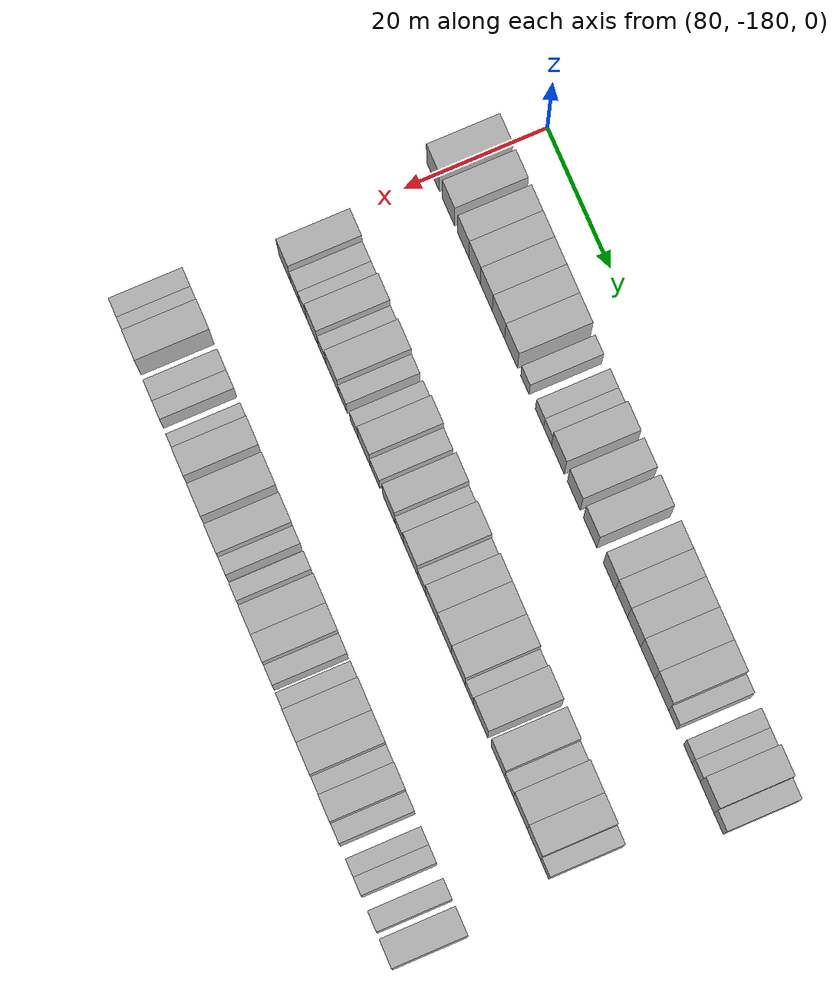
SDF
<sdf version="1.6">
 <world name="default">
  <model name="building_630">
   <static>1</static>
   <pose>91.0000 -179.8548 0 0.000000 0.000000 0.000000</pose>
   <link name="link">
    <pose>0 0 4.50 0 0 0</pose>
    <collision name="collision"><geometry><box><size>10.0000 4.0640 9.0000</size></box></geometry></collision>
    <visual name="visual">
     <cast_shadows>0</cast_shadows>
     <geometry><box><size>10.0000 4.0640 9.0000</size></box></geometry>
     <material>
      <script>
       <uri>model://HANNAS_wall/materials/scripts</uri>
       <uri>model://HANNAS_wall/materials/textures</uri>
       <name>vrc/HANNAS_wall</name>
      </script>
     </material>
    </visual>
   </link>
  </model>
  <model name="building_631">
   <static>1</static>
   <pose>91.0000 -174.8747 0 0.000000 0.000000 0.000000</pose>
   <link name="link">
    <pose>0 0 4.50 0 0 0</pose>
    <collision name="collision"><geometry><box><size>10.0000 3.8963 9.0000</size></box></geometry></collision>
    <visual name="visual">
     <cast_shadows>0</cast_shadows>
     <geometry><box><size>10.0000 3.8963 9.0000</size></box></geometry>
     <material>
      <script>
       <uri>model://HANNAS_wall/materials/scripts</uri>
       <uri>model://HANNAS_wall/materials/textures</uri>
       <name>vrc/HANNAS_wall</name>
      </script>
     </material>
    </visual>
   </link>
  </model>
  <model name="building_632">
   <static>1</static>
   <pose>91.0000 -170.1233 0 0.000000 0.000000 0.000000</pose>
   <link name="link">
    <pose>0 0 4.50 0 0 0</pose>
    <collision name="collision"><geometry><box><size>10.0000 3.6064 9.0000</size></box></geometry></collision>
    <visual name="visual">
     <cast_shadows>0</cast_shadows>
     <geometry><box><size>10.0000 3.6064 9.0000</size></box></geometry>
     <material>
      <script>
       <uri>model://HANNAS_wall/materials/scripts</uri>
       <uri>model://HANNAS_wall/materials/textures</uri>
       <name>vrc/HANNAS_wall</name>
      </script>
     </material>
    </visual>
   </link>
  </model>
  <model name="building_633">
   <static>1</static>
   <pose>91.0000 -166.4999 0 0.000000 0.000000 0.000000</pose>
   <link name="link">
    <pose>0 0 4.50 0 0 0</pose>
    <collision name="collision"><geometry><box><size>10.0000 3.6405 9.0000</size></box></geometry></collision>
    <visual name="visual">
     <cast_shadows>0</cast_shadows>
     <geometry><box><size>10.0000 3.6405 9.0000</size></box></geometry>
     <material>
      <script>
       <uri>model://HANNAS_wall/materials/scripts</uri>
       <uri>model://HANNAS_wall/materials/textures</uri>
       <name>vrc/HANNAS_wall</name>
      </script>
     </material>
    </visual>
   </link>
  </model>
  <model name="building_634">
   <static>1</static>
   <pose>91.0000 -162.7767 0 0.000000 0.000000 0.000000</pose>
   <link name="link">
    <pose>0 0 4.50 0 0 0</pose>
    <collision name="collision"><geometry><box><size>10.0000 3.8059 9.0000</size></box></geometry></collision>
    <visual name="visual">
     <cast_shadows>0</cast_shadows>
     <geometry><box><size>10.0000 3.8059 9.0000</size></box></geometry>
     <material>
      <script>
       <uri>model://HANNAS_wall/materials/scripts</uri>
       <uri>model://HANNAS_wall/materials/textures</uri>
       <name>vrc/HANNAS_wall</name>
      </script>
     </material>
    </visual>
   </link>
  </model>
  <model name="building_635">
   <static>1</static>
   <pose>91.0000 -158.8997 0 0.000000 0.000000 0.000000</pose>
   <link name="link">
    <pose>0 0 4.50 0 0 0</pose>
    <collision name="collision"><geometry><box><size>10.0000 3.9482 9.0000</size></box></geometry></collision>
    <visual name="visual">
     <cast_shadows>0</cast_shadows>
     <geometry><box><size>10.0000 3.9482 9.0000</size></box></geometry>
     <material>
      <script>
       <uri>model://HANNAS_wall/materials/scripts</uri>
       <uri>model://HANNAS_wall/materials/textures</uri>
       <name>vrc/HANNAS_wall</name>
      </script>
     </material>
    </visual>
   </link>
  </model>
  <model name="building_636">
   <static>1</static>
   <pose>91.0000 -154.8662 0 0.000000 0.000000 0.000000</pose>
   <link name="link">
    <pose>0 0 4.50 0 0 0</pose>
    <collision name="collision"><geometry><box><size>10.0000 4.1188 9.0000</size></box></geometry></collision>
    <visual name="visual">
     <cast_shadows>0</cast_shadows>
     <geometry><box><size>10.0000 4.1188 9.0000</size></box></geometry>
     <material>
      <script>
       <uri>model://HANNAS_wall/materials/scripts</uri>
       <uri>model://HANNAS_wall/materials/textures</uri>
       <name>vrc/HANNAS_wall</name>
      </script>
     </material>
    </visual>
   </link>
  </model>
  <model name="building_637">
   <static>1</static>
   <pose>91.0000 -150.4824 0 0.000000 0.000000 0.000000</pose>
   <link name="link">
    <pose>0 0 3.00 0 0 0</pose>
    <collision name="collision"><geometry><box><size>10.0000 2.6488 6.0000</size></box></geometry></collision>
    <visual name="visual">
     <cast_shadows>0</cast_shadows>
     <geometry><box><size>10.0000 2.6488 6.0000</size></box></geometry>
     <material>
      <script>
       <uri>model://HANNAS_wall/materials/scripts</uri>
       <uri>model://HANNAS_wall/materials/textures</uri>
       <name>vrc/HANNAS_wall</name>
      </script>
     </material>
    </visual>
   </link>
  </model>
  <model name="building_638">
   <static>1</static>
   <pose>91.0000 -145.8492 0 0.000000 0.000000 0.000000</pose>
   <link name="link">
    <pose>0 0 3.00 0 0 0</pose>
    <collision name="collision"><geometry><box><size>10.0000 2.6178 6.0000</size></box></geometry></collision>
    <visual name="visual">
     <cast_shadows>0</cast_shadows>
     <geometry><box><size>10.0000 2.6178 6.0000</size></box></geometry>
     <material>
      <script>
       <uri>model://HANNAS_wall/materials/scripts</uri>
       <uri>model://HANNAS_wall/materials/textures</uri>
       <name>vrc/HANNAS_wall</name>
      </script>
     </material>
    </visual>
   </link>
  </model>
  <model name="building_639">
   <static>1</static>
   <pose>91.0000 -143.3016 0 0.000000 0.000000 0.000000</pose>
   <link name="link">
    <pose>0 0 3.00 0 0 0</pose>
    <collision name="collision"><geometry><box><size>10.0000 2.4772 6.0000</size></box></geometry></collision>
    <visual name="visual">
     <cast_shadows>0</cast_shadows>
     <geometry><box><size>10.0000 2.4772 6.0000</size></box></geometry>
     <material>
      <script>
       <uri>model://HANNAS_wall/materials/scripts</uri>
       <uri>model://HANNAS_wall/materials/textures</uri>
       <name>vrc/HANNAS_wall</name>
      </script>
     </material>
    </visual>
   </link>
  </model>
  <model name="building_640">
   <static>1</static>
   <pose>91.0000 -140.0601 0 0.000000 0.000000 0.000000</pose>
   <link name="link">
    <pose>0 0 4.50 0 0 0</pose>
    <collision name="collision"><geometry><box><size>10.0000 4.0058 9.0000</size></box></geometry></collision>
    <visual name="visual">
     <cast_shadows>0</cast_shadows>
     <geometry><box><size>10.0000 4.0058 9.0000</size></box></geometry>
     <material>
      <script>
       <uri>model://HANNAS_wall/materials/scripts</uri>
       <uri>model://HANNAS_wall/materials/textures</uri>
       <name>vrc/HANNAS_wall</name>
      </script>
     </material>
    </visual>
   </link>
  </model>
  <model name="building_641">
   <static>1</static>
   <pose>91.0000 -135.0518 0 0.000000 0.000000 0.000000</pose>
   <link name="link">
    <pose>0 0 4.50 0 0 0</pose>
    <collision name="collision"><geometry><box><size>10.0000 4.0109 9.0000</size></box></geometry></collision>
    <visual name="visual">
     <cast_shadows>0</cast_shadows>
     <geometry><box><size>10.0000 4.0109 9.0000</size></box></geometry>
     <material>
      <script>
       <uri>model://HANNAS_wall/materials/scripts</uri>
       <uri>model://HANNAS_wall/materials/textures</uri>
       <name>vrc/HANNAS_wall</name>
      </script>
     </material>
    </visual>
   </link>
  </model>
  <model name="building_642">
   <static>1</static>
   <pose>91.0000 -129.9382 0 0.000000 0.000000 0.000000</pose>
   <link name="link">
    <pose>0 0 4.50 0 0 0</pose>
    <collision name="collision"><geometry><box><size>10.0000 4.2162 9.0000</size></box></geometry></collision>
    <visual name="visual">
     <cast_shadows>0</cast_shadows>
     <geometry><box><size>10.0000 4.2162 9.0000</size></box></geometry>
     <material>
      <script>
       <uri>model://HANNAS_wall/materials/scripts</uri>
       <uri>model://HANNAS_wall/materials/textures</uri>
       <name>vrc/HANNAS_wall</name>
      </script>
     </material>
    </visual>
   </link>
  </model>
  <model name="building_643">
   <static>1</static>
   <pose>91.0000 -123.9621 0 0.000000 0.000000 0.000000</pose>
   <link name="link">
    <pose>0 0 4.50 0 0 0</pose>
    <collision name="collision"><geometry><box><size>10.0000 3.7361 9.0000</size></box></geometry></collision>
    <visual name="visual">
     <cast_shadows>0</cast_shadows>
     <geometry><box><size>10.0000 3.7361 9.0000</size></box></geometry>
     <material>
      <script>
       <uri>model://HANNAS_wall/materials/scripts</uri>
       <uri>model://HANNAS_wall/materials/textures</uri>
       <name>vrc/HANNAS_wall</name>
      </script>
     </material>
    </visual>
   </link>
  </model>
  <model name="building_644">
   <static>1</static>
   <pose>91.0000 -120.1949 0 0.000000 0.000000 0.000000</pose>
   <link name="link">
    <pose>0 0 4.50 0 0 0</pose>
    <collision name="collision"><geometry><box><size>10.0000 3.7982 9.0000</size></box></geometry></collision>
    <visual name="visual">
     <cast_shadows>0</cast_shadows>
     <geometry><box><size>10.0000 3.7982 9.0000</size></box></geometry>
     <material>
      <script>
       <uri>model://HANNAS_wall/materials/scripts</uri>
       <uri>model://HANNAS_wall/materials/textures</uri>
       <name>vrc/HANNAS_wall</name>
      </script>
     </material>
    </visual>
   </link>
  </model>
  <model name="building_645">
   <static>1</static>
   <pose>91.0000 -116.2630 0 0.000000 0.000000 0.000000</pose>
   <link name="link">
    <pose>0 0 4.50 0 0 0</pose>
    <collision name="collision"><geometry><box><size>10.0000 4.0657 9.0000</size></box></geometry></collision>
    <visual name="visual">
     <cast_shadows>0</cast_shadows>
     <geometry><box><size>10.0000 4.0657 9.0000</size></box></geometry>
     <material>
      <script>
       <uri>model://HANNAS_wall/materials/scripts</uri>
       <uri>model://HANNAS_wall/materials/textures</uri>
       <name>vrc/HANNAS_wall</name>
      </script>
     </material>
    </visual>
   </link>
  </model>
  <model name="building_646">
   <static>1</static>
   <pose>91.0000 -112.0361 0 0.000000 0.000000 0.000000</pose>
   <link name="link">
    <pose>0 0 4.50 0 0 0</pose>
    <collision name="collision"><geometry><box><size>10.0000 4.3880 9.0000</size></box></geometry></collision>
    <visual name="visual">
     <cast_shadows>0</cast_shadows>
     <geometry><box><size>10.0000 4.3880 9.0000</size></box></geometry>
     <material>
      <script>
       <uri>model://HANNAS_wall/materials/scripts</uri>
       <uri>model://HANNAS_wall/materials/textures</uri>
       <name>vrc/HANNAS_wall</name>
      </script>
     </material>
    </visual>
   </link>
  </model>
  <model name="building_647">
   <static>1</static>
   <pose>91.0000 -107.7220 0 0.000000 0.000000 0.000000</pose>
   <link name="link">
    <pose>0 0 4.50 0 0 0</pose>
    <collision name="collision"><geometry><box><size>10.0000 4.2401 9.0000</size></box></geometry></collision>
    <visual name="visual">
     <cast_shadows>0</cast_shadows>
     <geometry><box><size>10.0000 4.2401 9.0000</size></box></geometry>
     <material>
      <script>
       <uri>model://HANNAS_wall/materials/scripts</uri>
       <uri>model://HANNAS_wall/materials/textures</uri>
       <name>vrc/HANNAS_wall</name>
      </script>
     </material>
    </visual>
   </link>
  </model>
  <model name="building_648">
   <static>1</static>
   <pose>91.0000 -104.3299 0 0.000000 0.000000 0.000000</pose>
   <link name="link">
    <pose>0 0 3.00 0 0 0</pose>
    <collision name="collision"><geometry><box><size>10.0000 2.5441 6.0000</size></box></geometry></collision>
    <visual name="visual">
     <cast_shadows>0</cast_shadows>
     <geometry><box><size>10.0000 2.5441 6.0000</size></box></geometry>
     <material>
      <script>
       <uri>model://HANNAS_wall/materials/scripts</uri>
       <uri>model://HANNAS_wall/materials/textures</uri>
       <name>vrc/HANNAS_wall</name>
      </script>
     </material>
    </visual>
   </link>
  </model>
  <model name="building_649">
   <static>1</static>
   <pose>91.0000 -99.7470 0 0.000000 0.000000 0.000000</pose>
   <link name="link">
    <pose>0 0 3.00 0 0 0</pose>
    <collision name="collision"><geometry><box><size>10.0000 2.6217 6.0000</size></box></geometry></collision>
    <visual name="visual">
     <cast_shadows>0</cast_shadows>
     <geometry><box><size>10.0000 2.6217 6.0000</size></box></geometry>
     <material>
      <script>
       <uri>model://HANNAS_wall/materials/scripts</uri>
       <uri>model://HANNAS_wall/materials/textures</uri>
       <name>vrc/HANNAS_wall</name>
      </script>
     </material>
    </visual>
   </link>
  </model>
  <model name="building_650">
   <static>1</static>
   <pose>91.0000 -97.1892 0 0.000000 0.000000 0.000000</pose>
   <link name="link">
    <pose>0 0 3.00 0 0 0</pose>
    <collision name="collision"><geometry><box><size>10.0000 2.4940 6.0000</size></box></geometry></collision>
    <visual name="visual">
     <cast_shadows>0</cast_shadows>
     <geometry><box><size>10.0000 2.4940 6.0000</size></box></geometry>
     <material>
      <script>
       <uri>model://HANNAS_wall/materials/scripts</uri>
       <uri>model://HANNAS_wall/materials/textures</uri>
       <name>vrc/HANNAS_wall</name>
      </script>
     </material>
    </visual>
   </link>
  </model>
  <model name="building_651">
   <static>1</static>
   <pose>91.0000 -93.8425 0 0.000000 0.000000 0.000000</pose>
   <link name="link">
    <pose>0 0 4.50 0 0 0</pose>
    <collision name="collision"><geometry><box><size>10.0000 4.1995 9.0000</size></box></geometry></collision>
    <visual name="visual">
     <cast_shadows>0</cast_shadows>
     <geometry><box><size>10.0000 4.1995 9.0000</size></box></geometry>
     <material>
      <script>
       <uri>model://HANNAS_wall/materials/scripts</uri>
       <uri>model://HANNAS_wall/materials/textures</uri>
       <name>vrc/HANNAS_wall</name>
      </script>
     </material>
    </visual>
   </link>
  </model>
  <model name="building_652">
   <static>1</static>
   <pose>91.0000 -90.3346 0 0.000000 0.000000 0.000000</pose>
   <link name="link">
    <pose>0 0 3.00 0 0 0</pose>
    <collision name="collision"><geometry><box><size>10.0000 2.8164 6.0000</size></box></geometry></collision>
    <visual name="visual">
     <cast_shadows>0</cast_shadows>
     <geometry><box><size>10.0000 2.8164 6.0000</size></box></geometry>
     <material>
      <script>
       <uri>model://HANNAS_wall/materials/scripts</uri>
       <uri>model://HANNAS_wall/materials/textures</uri>
       <name>vrc/HANNAS_wall</name>
      </script>
     </material>
    </visual>
   </link>
  </model>
  <model name="building_818">
   <static>1</static>
   <pose>113.0000 -176.1823 0 0.000000 0.000000 0.000000</pose>
   <link name="link">
    <pose>0 0 4.50 0 0 0</pose>
    <collision name="collision"><geometry><box><size>10.0000 3.7671 9.0000</size></box></geometry></collision>
    <visual name="visual">
     <cast_shadows>0</cast_shadows>
     <geometry><box><size>10.0000 3.7671 9.0000</size></box></geometry>
     <material>
      <script>
       <uri>model://HANNAS_wall/materials/scripts</uri>
       <uri>model://HANNAS_wall/materials/textures</uri>
       <name>vrc/HANNAS_wall</name>
      </script>
     </material>
    </visual>
   </link>
  </model>
  <model name="building_819">
   <static>1</static>
   <pose>113.0000 -172.9080 0 0.000000 0.000000 0.000000</pose>
   <link name="link">
    <pose>0 0 3.00 0 0 0</pose>
    <collision name="collision"><geometry><box><size>10.0000 2.7816 6.0000</size></box></geometry></collision>
    <visual name="visual">
     <cast_shadows>0</cast_shadows>
     <geometry><box><size>10.0000 2.7816 6.0000</size></box></geometry>
     <material>
      <script>
       <uri>model://HANNAS_wall/materials/scripts</uri>
       <uri>model://HANNAS_wall/materials/textures</uri>
       <name>vrc/HANNAS_wall</name>
      </script>
     </material>
    </visual>
   </link>
  </model>
  <model name="building_820">
   <static>1</static>
   <pose>113.0000 -170.3097 0 0.000000 0.000000 0.000000</pose>
   <link name="link">
    <pose>0 0 3.00 0 0 0</pose>
    <collision name="collision"><geometry><box><size>10.0000 2.4149 6.0000</size></box></geometry></collision>
    <visual name="visual">
     <cast_shadows>0</cast_shadows>
     <geometry><box><size>10.0000 2.4149 6.0000</size></box></geometry>
     <material>
      <script>
       <uri>model://HANNAS_wall/materials/scripts</uri>
       <uri>model://HANNAS_wall/materials/textures</uri>
       <name>vrc/HANNAS_wall</name>
      </script>
     </material>
    </visual>
   </link>
  </model>
  <model name="building_821">
   <static>1</static>
   <pose>113.0000 -167.2250 0 0.000000 0.000000 0.000000</pose>
   <link name="link">
    <pose>0 0 4.50 0 0 0</pose>
    <collision name="collision"><geometry><box><size>10.0000 3.7546 9.0000</size></box></geometry></collision>
    <visual name="visual">
     <cast_shadows>0</cast_shadows>
     <geometry><box><size>10.0000 3.7546 9.0000</size></box></geometry>
     <material>
      <script>
       <uri>model://HANNAS_wall/materials/scripts</uri>
       <uri>model://HANNAS_wall/materials/textures</uri>
       <name>vrc/HANNAS_wall</name>
      </script>
     </material>
    </visual>
   </link>
  </model>
  <model name="building_822">
   <static>1</static>
   <pose>113.0000 -164.0512 0 0.000000 0.000000 0.000000</pose>
   <link name="link">
    <pose>0 0 3.00 0 0 0</pose>
    <collision name="collision"><geometry><box><size>10.0000 2.5929 6.0000</size></box></geometry></collision>
    <visual name="visual">
     <cast_shadows>0</cast_shadows>
     <geometry><box><size>10.0000 2.5929 6.0000</size></box></geometry>
     <material>
      <script>
       <uri>model://HANNAS_wall/materials/scripts</uri>
       <uri>model://HANNAS_wall/materials/textures</uri>
       <name>vrc/HANNAS_wall</name>
      </script>
     </material>
    </visual>
   </link>
  </model>
  <model name="building_823">
   <static>1</static>
   <pose>113.0000 -160.6893 0 0.000000 0.000000 0.000000</pose>
   <link name="link">
    <pose>0 0 4.50 0 0 0</pose>
    <collision name="collision"><geometry><box><size>10.0000 4.1309 9.0000</size></box></geometry></collision>
    <visual name="visual">
     <cast_shadows>0</cast_shadows>
     <geometry><box><size>10.0000 4.1309 9.0000</size></box></geometry>
     <material>
      <script>
       <uri>model://HANNAS_wall/materials/scripts</uri>
       <uri>model://HANNAS_wall/materials/textures</uri>
       <name>vrc/HANNAS_wall</name>
      </script>
     </material>
    </visual>
   </link>
  </model>
  <model name="building_824">
   <static>1</static>
   <pose>113.0000 -157.3034 0 0.000000 0.000000 0.000000</pose>
   <link name="link">
    <pose>0 0 3.00 0 0 0</pose>
    <collision name="collision"><geometry><box><size>10.0000 2.6409 6.0000</size></box></geometry></collision>
    <visual name="visual">
     <cast_shadows>0</cast_shadows>
     <geometry><box><size>10.0000 2.6409 6.0000</size></box></geometry>
     <material>
      <script>
       <uri>model://HANNAS_wall/materials/scripts</uri>
       <uri>model://HANNAS_wall/materials/textures</uri>
       <name>vrc/HANNAS_wall</name>
      </script>
     </material>
    </visual>
   </link>
  </model>
  <model name="building_825">
   <static>1</static>
   <pose>113.0000 -153.6493 0 0.000000 0.000000 0.000000</pose>
   <link name="link">
    <pose>0 0 3.00 0 0 0</pose>
    <collision name="collision"><geometry><box><size>10.0000 2.6675 6.0000</size></box></geometry></collision>
    <visual name="visual">
     <cast_shadows>0</cast_shadows>
     <geometry><box><size>10.0000 2.6675 6.0000</size></box></geometry>
     <material>
      <script>
       <uri>model://HANNAS_wall/materials/scripts</uri>
       <uri>model://HANNAS_wall/materials/textures</uri>
       <name>vrc/HANNAS_wall</name>
      </script>
     </material>
    </visual>
   </link>
  </model>
  <model name="building_826">
   <static>1</static>
   <pose>113.0000 -150.3975 0 0.000000 0.000000 0.000000</pose>
   <link name="link">
    <pose>0 0 4.50 0 0 0</pose>
    <collision name="collision"><geometry><box><size>10.0000 3.8360 9.0000</size></box></geometry></collision>
    <visual name="visual">
     <cast_shadows>0</cast_shadows>
     <geometry><box><size>10.0000 3.8360 9.0000</size></box></geometry>
     <material>
      <script>
       <uri>model://HANNAS_wall/materials/scripts</uri>
       <uri>model://HANNAS_wall/materials/textures</uri>
       <name>vrc/HANNAS_wall</name>
      </script>
     </material>
    </visual>
   </link>
  </model>
  <model name="building_827">
   <static>1</static>
   <pose>113.0000 -146.9913 0 0.000000 0.000000 0.000000</pose>
   <link name="link">
    <pose>0 0 3.00 0 0 0</pose>
    <collision name="collision"><geometry><box><size>10.0000 2.9765 6.0000</size></box></geometry></collision>
    <visual name="visual">
     <cast_shadows>0</cast_shadows>
     <geometry><box><size>10.0000 2.9765 6.0000</size></box></geometry>
     <material>
      <script>
       <uri>model://HANNAS_wall/materials/scripts</uri>
       <uri>model://HANNAS_wall/materials/textures</uri>
       <name>vrc/HANNAS_wall</name>
      </script>
     </material>
    </visual>
   </link>
  </model>
  <model name="building_828">
   <static>1</static>
   <pose>113.0000 -142.5444 0 0.000000 0.000000 0.000000</pose>
   <link name="link">
    <pose>0 0 4.50 0 0 0</pose>
    <collision name="collision"><geometry><box><size>10.0000 3.9172 9.0000</size></box></geometry></collision>
    <visual name="visual">
     <cast_shadows>0</cast_shadows>
     <geometry><box><size>10.0000 3.9172 9.0000</size></box></geometry>
     <material>
      <script>
       <uri>model://HANNAS_wall/materials/scripts</uri>
       <uri>model://HANNAS_wall/materials/textures</uri>
       <name>vrc/HANNAS_wall</name>
      </script>
     </material>
    </visual>
   </link>
  </model>
  <model name="building_829">
   <static>1</static>
   <pose>113.0000 -139.2513 0 0.000000 0.000000 0.000000</pose>
   <link name="link">
    <pose>0 0 3.00 0 0 0</pose>
    <collision name="collision"><geometry><box><size>10.0000 2.6691 6.0000</size></box></geometry></collision>
    <visual name="visual">
     <cast_shadows>0</cast_shadows>
     <geometry><box><size>10.0000 2.6691 6.0000</size></box></geometry>
     <material>
      <script>
       <uri>model://HANNAS_wall/materials/scripts</uri>
       <uri>model://HANNAS_wall/materials/textures</uri>
       <name>vrc/HANNAS_wall</name>
      </script>
     </material>
    </visual>
   </link>
  </model>
  <model name="building_830">
   <static>1</static>
   <pose>113.0000 -135.6717 0 0.000000 0.000000 0.000000</pose>
   <link name="link">
    <pose>0 0 4.50 0 0 0</pose>
    <collision name="collision"><geometry><box><size>10.0000 4.4901 9.0000</size></box></geometry></collision>
    <visual name="visual">
     <cast_shadows>0</cast_shadows>
     <geometry><box><size>10.0000 4.4901 9.0000</size></box></geometry>
     <material>
      <script>
       <uri>model://HANNAS_wall/materials/scripts</uri>
       <uri>model://HANNAS_wall/materials/textures</uri>
       <name>vrc/HANNAS_wall</name>
      </script>
     </material>
    </visual>
   </link>
  </model>
  <model name="building_831">
   <static>1</static>
   <pose>113.0000 -132.1468 0 0.000000 0.000000 0.000000</pose>
   <link name="link">
    <pose>0 0 3.00 0 0 0</pose>
    <collision name="collision"><geometry><box><size>10.0000 2.5596 6.0000</size></box></geometry></collision>
    <visual name="visual">
     <cast_shadows>0</cast_shadows>
     <geometry><box><size>10.0000 2.5596 6.0000</size></box></geometry>
     <material>
      <script>
       <uri>model://HANNAS_wall/materials/scripts</uri>
       <uri>model://HANNAS_wall/materials/textures</uri>
       <name>vrc/HANNAS_wall</name>
      </script>
     </material>
    </visual>
   </link>
  </model>
  <model name="building_832">
   <static>1</static>
   <pose>113.0000 -129.0022 0 0.000000 0.000000 0.000000</pose>
   <link name="link">
    <pose>0 0 4.50 0 0 0</pose>
    <collision name="collision"><geometry><box><size>10.0000 3.7297 9.0000</size></box></geometry></collision>
    <visual name="visual">
     <cast_shadows>0</cast_shadows>
     <geometry><box><size>10.0000 3.7297 9.0000</size></box></geometry>
     <material>
      <script>
       <uri>model://HANNAS_wall/materials/scripts</uri>
       <uri>model://HANNAS_wall/materials/textures</uri>
       <name>vrc/HANNAS_wall</name>
      </script>
     </material>
    </visual>
   </link>
  </model>
  <model name="building_833">
   <static>1</static>
   <pose>113.0000 -124.9345 0 0.000000 0.000000 0.000000</pose>
   <link name="link">
    <pose>0 0 4.50 0 0 0</pose>
    <collision name="collision"><geometry><box><size>10.0000 4.4057 9.0000</size></box></geometry></collision>
    <visual name="visual">
     <cast_shadows>0</cast_shadows>
     <geometry><box><size>10.0000 4.4057 9.0000</size></box></geometry>
     <material>
      <script>
       <uri>model://HANNAS_wall/materials/scripts</uri>
       <uri>model://HANNAS_wall/materials/textures</uri>
       <name>vrc/HANNAS_wall</name>
      </script>
     </material>
    </visual>
   </link>
  </model>
  <model name="building_834">
   <static>1</static>
   <pose>113.0000 -120.5790 0 0.000000 0.000000 0.000000</pose>
   <link name="link">
    <pose>0 0 4.50 0 0 0</pose>
    <collision name="collision"><geometry><box><size>10.0000 4.3053 9.0000</size></box></geometry></collision>
    <visual name="visual">
     <cast_shadows>0</cast_shadows>
     <geometry><box><size>10.0000 4.3053 9.0000</size></box></geometry>
     <material>
      <script>
       <uri>model://HANNAS_wall/materials/scripts</uri>
       <uri>model://HANNAS_wall/materials/textures</uri>
       <name>vrc/HANNAS_wall</name>
      </script>
     </material>
    </visual>
   </link>
  </model>
  <model name="building_835">
   <static>1</static>
   <pose>113.0000 -117.1470 0 0.000000 0.000000 0.000000</pose>
   <link name="link">
    <pose>0 0 3.00 0 0 0</pose>
    <collision name="collision"><geometry><box><size>10.0000 2.5587 6.0000</size></box></geometry></collision>
    <visual name="visual">
     <cast_shadows>0</cast_shadows>
     <geometry><box><size>10.0000 2.5587 6.0000</size></box></geometry>
     <material>
      <script>
       <uri>model://HANNAS_wall/materials/scripts</uri>
       <uri>model://HANNAS_wall/materials/textures</uri>
       <name>vrc/HANNAS_wall</name>
      </script>
     </material>
    </visual>
   </link>
  </model>
  <model name="building_836">
   <static>1</static>
   <pose>113.0000 -113.6220 0 0.000000 0.000000 0.000000</pose>
   <link name="link">
    <pose>0 0 4.50 0 0 0</pose>
    <collision name="collision"><geometry><box><size>10.0000 4.4911 9.0000</size></box></geometry></collision>
    <visual name="visual">
     <cast_shadows>0</cast_shadows>
     <geometry><box><size>10.0000 4.4911 9.0000</size></box></geometry>
     <material>
      <script>
       <uri>model://HANNAS_wall/materials/scripts</uri>
       <uri>model://HANNAS_wall/materials/textures</uri>
       <name>vrc/HANNAS_wall</name>
      </script>
     </material>
    </visual>
   </link>
  </model>
  <model name="building_837">
   <static>1</static>
   <pose>113.0000 -108.2461 0 0.000000 0.000000 0.000000</pose>
   <link name="link">
    <pose>0 0 4.50 0 0 0</pose>
    <collision name="collision"><geometry><box><size>10.0000 4.2608 9.0000</size></box></geometry></collision>
    <visual name="visual">
     <cast_shadows>0</cast_shadows>
     <geometry><box><size>10.0000 4.2608 9.0000</size></box></geometry>
     <material>
      <script>
       <uri>model://HANNAS_wall/materials/scripts</uri>
       <uri>model://HANNAS_wall/materials/textures</uri>
       <name>vrc/HANNAS_wall</name>
      </script>
     </material>
    </visual>
   </link>
  </model>
  <model name="building_838">
   <static>1</static>
   <pose>113.0000 -104.7389 0 0.000000 0.000000 0.000000</pose>
   <link name="link">
    <pose>0 0 3.00 0 0 0</pose>
    <collision name="collision"><geometry><box><size>10.0000 2.7536 6.0000</size></box></geometry></collision>
    <visual name="visual">
     <cast_shadows>0</cast_shadows>
     <geometry><box><size>10.0000 2.7536 6.0000</size></box></geometry>
     <material>
      <script>
       <uri>model://HANNAS_wall/materials/scripts</uri>
       <uri>model://HANNAS_wall/materials/textures</uri>
       <name>vrc/HANNAS_wall</name>
      </script>
     </material>
    </visual>
   </link>
  </model>
  <model name="building_839">
   <static>1</static>
   <pose>113.0000 -101.2028 0 0.000000 0.000000 0.000000</pose>
   <link name="link">
    <pose>0 0 4.50 0 0 0</pose>
    <collision name="collision"><geometry><box><size>10.0000 4.3186 9.0000</size></box></geometry></collision>
    <visual name="visual">
     <cast_shadows>0</cast_shadows>
     <geometry><box><size>10.0000 4.3186 9.0000</size></box></geometry>
     <material>
      <script>
       <uri>model://HANNAS_wall/materials/scripts</uri>
       <uri>model://HANNAS_wall/materials/textures</uri>
       <name>vrc/HANNAS_wall</name>
      </script>
     </material>
    </visual>
   </link>
  </model>
  <model name="building_840">
   <static>1</static>
   <pose>113.0000 -96.9791 0 0.000000 0.000000 0.000000</pose>
   <link name="link">
    <pose>0 0 4.50 0 0 0</pose>
    <collision name="collision"><geometry><box><size>10.0000 4.1287 9.0000</size></box></geometry></collision>
    <visual name="visual">
     <cast_shadows>0</cast_shadows>
     <geometry><box><size>10.0000 4.1287 9.0000</size></box></geometry>
     <material>
      <script>
       <uri>model://HANNAS_wall/materials/scripts</uri>
       <uri>model://HANNAS_wall/materials/textures</uri>
       <name>vrc/HANNAS_wall</name>
      </script>
     </material>
    </visual>
   </link>
  </model>
  <model name="building_841">
   <static>1</static>
   <pose>113.0000 -93.6467 0 0.000000 0.000000 0.000000</pose>
   <link name="link">
    <pose>0 0 3.00 0 0 0</pose>
    <collision name="collision"><geometry><box><size>10.0000 2.5362 6.0000</size></box></geometry></collision>
    <visual name="visual">
     <cast_shadows>0</cast_shadows>
     <geometry><box><size>10.0000 2.5362 6.0000</size></box></geometry>
     <material>
      <script>
       <uri>model://HANNAS_wall/materials/scripts</uri>
       <uri>model://HANNAS_wall/materials/textures</uri>
       <name>vrc/HANNAS_wall</name>
      </script>
     </material>
    </visual>
   </link>
  </model>
  <model name="building_1004">
   <static>1</static>
   <pose>135.0000 -178.8044 0 0.000000 0.000000 0.000000</pose>
   <link name="link">
    <pose>0 0 3.00 0 0 0</pose>
    <collision name="collision"><geometry><box><size>10.0000 2.6158 6.0000</size></box></geometry></collision>
    <visual name="visual">
     <cast_shadows>0</cast_shadows>
     <geometry><box><size>10.0000 2.6158 6.0000</size></box></geometry>
     <material>
      <script>
       <uri>model://HANNAS_wall/materials/scripts</uri>
       <uri>model://HANNAS_wall/materials/textures</uri>
       <name>vrc/HANNAS_wall</name>
      </script>
     </material>
    </visual>
   </link>
  </model>
  <model name="building_1005">
   <static>1</static>
   <pose>135.0000 -176.2440 0 0.000000 0.000000 0.000000</pose>
   <link name="link">
    <pose>0 0 3.00 0 0 0</pose>
    <collision name="collision"><geometry><box><size>10.0000 2.5049 6.0000</size></box></geometry></collision>
    <visual name="visual">
     <cast_shadows>0</cast_shadows>
     <geometry><box><size>10.0000 2.5049 6.0000</size></box></geometry>
     <material>
      <script>
       <uri>model://HANNAS_wall/materials/scripts</uri>
       <uri>model://HANNAS_wall/materials/textures</uri>
       <name>vrc/HANNAS_wall</name>
      </script>
     </material>
    </visual>
   </link>
  </model>
  <model name="building_1006">
   <static>1</static>
   <pose>135.0000 -172.8958 0 0.000000 0.000000 0.000000</pose>
   <link name="link">
    <pose>0 0 4.50 0 0 0</pose>
    <collision name="collision"><geometry><box><size>10.0000 4.1915 9.0000</size></box></geometry></collision>
    <visual name="visual">
     <cast_shadows>0</cast_shadows>
     <geometry><box><size>10.0000 4.1915 9.0000</size></box></geometry>
     <material>
      <script>
       <uri>model://HANNAS_wall/materials/scripts</uri>
       <uri>model://HANNAS_wall/materials/textures</uri>
       <name>vrc/HANNAS_wall</name>
      </script>
     </material>
    </visual>
   </link>
  </model>
  <model name="building_1007">
   <static>1</static>
   <pose>135.0000 -167.3548 0 0.000000 0.000000 0.000000</pose>
   <link name="link">
    <pose>0 0 3.00 0 0 0</pose>
    <collision name="collision"><geometry><box><size>10.0000 2.8907 6.0000</size></box></geometry></collision>
    <visual name="visual">
     <cast_shadows>0</cast_shadows>
     <geometry><box><size>10.0000 2.8907 6.0000</size></box></geometry>
     <material>
      <script>
       <uri>model://HANNAS_wall/materials/scripts</uri>
       <uri>model://HANNAS_wall/materials/textures</uri>
       <name>vrc/HANNAS_wall</name>
      </script>
     </material>
    </visual>
   </link>
  </model>
  <model name="building_1008">
   <static>1</static>
   <pose>135.0000 -164.6339 0 0.000000 0.000000 0.000000</pose>
   <link name="link">
    <pose>0 0 3.00 0 0 0</pose>
    <collision name="collision"><geometry><box><size>10.0000 2.5511 6.0000</size></box></geometry></collision>
    <visual name="visual">
     <cast_shadows>0</cast_shadows>
     <geometry><box><size>10.0000 2.5511 6.0000</size></box></geometry>
     <material>
      <script>
       <uri>model://HANNAS_wall/materials/scripts</uri>
       <uri>model://HANNAS_wall/materials/textures</uri>
       <name>vrc/HANNAS_wall</name>
      </script>
     </material>
    </visual>
   </link>
  </model>
  <model name="building_1009">
   <static>1</static>
   <pose>135.0000 -160.1513 0 0.000000 0.000000 0.000000</pose>
   <link name="link">
    <pose>0 0 3.00 0 0 0</pose>
    <collision name="collision"><geometry><box><size>10.0000 2.4139 6.0000</size></box></geometry></collision>
    <visual name="visual">
     <cast_shadows>0</cast_shadows>
     <geometry><box><size>10.0000 2.4139 6.0000</size></box></geometry>
     <material>
      <script>
       <uri>model://HANNAS_wall/materials/scripts</uri>
       <uri>model://HANNAS_wall/materials/textures</uri>
       <name>vrc/HANNAS_wall</name>
      </script>
     </material>
    </visual>
   </link>
  </model>
  <model name="building_1010">
   <static>1</static>
   <pose>135.0000 -156.9892 0 0.000000 0.000000 0.000000</pose>
   <link name="link">
    <pose>0 0 4.50 0 0 0</pose>
    <collision name="collision"><geometry><box><size>10.0000 3.9105 9.0000</size></box></geometry></collision>
    <visual name="visual">
     <cast_shadows>0</cast_shadows>
     <geometry><box><size>10.0000 3.9105 9.0000</size></box></geometry>
     <material>
      <script>
       <uri>model://HANNAS_wall/materials/scripts</uri>
       <uri>model://HANNAS_wall/materials/textures</uri>
       <name>vrc/HANNAS_wall</name>
      </script>
     </material>
    </visual>
   </link>
  </model>
  <model name="building_1011">
   <static>1</static>
   <pose>135.0000 -151.7987 0 0.000000 0.000000 0.000000</pose>
   <link name="link">
    <pose>0 0 4.50 0 0 0</pose>
    <collision name="collision"><geometry><box><size>10.0000 4.4704 9.0000</size></box></geometry></collision>
    <visual name="visual">
     <cast_shadows>0</cast_shadows>
     <geometry><box><size>10.0000 4.4704 9.0000</size></box></geometry>
     <material>
      <script>
       <uri>model://HANNAS_wall/materials/scripts</uri>
       <uri>model://HANNAS_wall/materials/textures</uri>
       <name>vrc/HANNAS_wall</name>
      </script>
     </material>
    </visual>
   </link>
  </model>
  <model name="building_1012">
   <static>1</static>
   <pose>135.0000 -146.5535 0 0.000000 0.000000 0.000000</pose>
   <link name="link">
    <pose>0 0 4.50 0 0 0</pose>
    <collision name="collision"><geometry><box><size>10.0000 4.0200 9.0000</size></box></geometry></collision>
    <visual name="visual">
     <cast_shadows>0</cast_shadows>
     <geometry><box><size>10.0000 4.0200 9.0000</size></box></geometry>
     <material>
      <script>
       <uri>model://HANNAS_wall/materials/scripts</uri>
       <uri>model://HANNAS_wall/materials/textures</uri>
       <name>vrc/HANNAS_wall</name>
      </script>
     </material>
    </visual>
   </link>
  </model>
  <model name="building_1013">
   <static>1</static>
   <pose>135.0000 -143.3341 0 0.000000 0.000000 0.000000</pose>
   <link name="link">
    <pose>0 0 3.00 0 0 0</pose>
    <collision name="collision"><geometry><box><size>10.0000 2.4188 6.0000</size></box></geometry></collision>
    <visual name="visual">
     <cast_shadows>0</cast_shadows>
     <geometry><box><size>10.0000 2.4188 6.0000</size></box></geometry>
     <material>
      <script>
       <uri>model://HANNAS_wall/materials/scripts</uri>
       <uri>model://HANNAS_wall/materials/textures</uri>
       <name>vrc/HANNAS_wall</name>
      </script>
     </material>
    </visual>
   </link>
  </model>
  <model name="building_1014">
   <static>1</static>
   <pose>135.0000 -139.8829 0 0.000000 0.000000 0.000000</pose>
   <link name="link">
    <pose>0 0 3.00 0 0 0</pose>
    <collision name="collision"><geometry><box><size>10.0000 2.4837 6.0000</size></box></geometry></collision>
    <visual name="visual">
     <cast_shadows>0</cast_shadows>
     <geometry><box><size>10.0000 2.4837 6.0000</size></box></geometry>
     <material>
      <script>
       <uri>model://HANNAS_wall/materials/scripts</uri>
       <uri>model://HANNAS_wall/materials/textures</uri>
       <name>vrc/HANNAS_wall</name>
      </script>
     </material>
    </visual>
   </link>
  </model>
  <model name="building_1015">
   <static>1</static>
   <pose>135.0000 -135.6769 0 0.000000 0.000000 0.000000</pose>
   <link name="link">
    <pose>0 0 4.50 0 0 0</pose>
    <collision name="collision"><geometry><box><size>10.0000 3.9283 9.0000</size></box></geometry></collision>
    <visual name="visual">
     <cast_shadows>0</cast_shadows>
     <geometry><box><size>10.0000 3.9283 9.0000</size></box></geometry>
     <material>
      <script>
       <uri>model://HANNAS_wall/materials/scripts</uri>
       <uri>model://HANNAS_wall/materials/textures</uri>
       <name>vrc/HANNAS_wall</name>
      </script>
     </material>
    </visual>
   </link>
  </model>
  <model name="building_1016">
   <static>1</static>
   <pose>135.0000 -131.8594 0 0.000000 0.000000 0.000000</pose>
   <link name="link">
    <pose>0 0 4.50 0 0 0</pose>
    <collision name="collision"><geometry><box><size>10.0000 3.7067 9.0000</size></box></geometry></collision>
    <visual name="visual">
     <cast_shadows>0</cast_shadows>
     <geometry><box><size>10.0000 3.7067 9.0000</size></box></geometry>
     <material>
      <script>
       <uri>model://HANNAS_wall/materials/scripts</uri>
       <uri>model://HANNAS_wall/materials/textures</uri>
       <name>vrc/HANNAS_wall</name>
      </script>
     </material>
    </visual>
   </link>
  </model>
  <model name="building_1017">
   <static>1</static>
   <pose>135.0000 -128.6435 0 0.000000 0.000000 0.000000</pose>
   <link name="link">
    <pose>0 0 3.00 0 0 0</pose>
    <collision name="collision"><geometry><box><size>10.0000 2.7250 6.0000</size></box></geometry></collision>
    <visual name="visual">
     <cast_shadows>0</cast_shadows>
     <geometry><box><size>10.0000 2.7250 6.0000</size></box></geometry>
     <material>
      <script>
       <uri>model://HANNAS_wall/materials/scripts</uri>
       <uri>model://HANNAS_wall/materials/textures</uri>
       <name>vrc/HANNAS_wall</name>
      </script>
     </material>
    </visual>
   </link>
  </model>
  <model name="building_1018">
   <static>1</static>
   <pose>135.0000 -125.0263 0 0.000000 0.000000 0.000000</pose>
   <link name="link">
    <pose>0 0 3.00 0 0 0</pose>
    <collision name="collision"><geometry><box><size>10.0000 2.5095 6.0000</size></box></geometry></collision>
    <visual name="visual">
     <cast_shadows>0</cast_shadows>
     <geometry><box><size>10.0000 2.5095 6.0000</size></box></geometry>
     <material>
      <script>
       <uri>model://HANNAS_wall/materials/scripts</uri>
       <uri>model://HANNAS_wall/materials/textures</uri>
       <name>vrc/HANNAS_wall</name>
      </script>
     </material>
    </visual>
   </link>
  </model>
  <model name="building_1019">
   <static>1</static>
   <pose>135.0000 -121.5864 0 0.000000 0.000000 0.000000</pose>
   <link name="link">
    <pose>0 0 4.50 0 0 0</pose>
    <collision name="collision"><geometry><box><size>10.0000 4.3703 9.0000</size></box></geometry></collision>
    <visual name="visual">
     <cast_shadows>0</cast_shadows>
     <geometry><box><size>10.0000 4.3703 9.0000</size></box></geometry>
     <material>
      <script>
       <uri>model://HANNAS_wall/materials/scripts</uri>
       <uri>model://HANNAS_wall/materials/textures</uri>
       <name>vrc/HANNAS_wall</name>
      </script>
     </material>
    </visual>
   </link>
  </model>
  <model name="building_1020">
   <static>1</static>
   <pose>135.0000 -117.2611 0 0.000000 0.000000 0.000000</pose>
   <link name="link">
    <pose>0 0 4.50 0 0 0</pose>
    <collision name="collision"><geometry><box><size>10.0000 4.2803 9.0000</size></box></geometry></collision>
    <visual name="visual">
     <cast_shadows>0</cast_shadows>
     <geometry><box><size>10.0000 4.2803 9.0000</size></box></geometry>
     <material>
      <script>
       <uri>model://HANNAS_wall/materials/scripts</uri>
       <uri>model://HANNAS_wall/materials/textures</uri>
       <name>vrc/HANNAS_wall</name>
      </script>
     </material>
    </visual>
   </link>
  </model>
  <model name="building_1021">
   <static>1</static>
   <pose>135.0000 -113.8167 0 0.000000 0.000000 0.000000</pose>
   <link name="link">
    <pose>0 0 3.00 0 0 0</pose>
    <collision name="collision"><geometry><box><size>10.0000 2.6085 6.0000</size></box></geometry></collision>
    <visual name="visual">
     <cast_shadows>0</cast_shadows>
     <geometry><box><size>10.0000 2.6085 6.0000</size></box></geometry>
     <material>
      <script>
       <uri>model://HANNAS_wall/materials/scripts</uri>
       <uri>model://HANNAS_wall/materials/textures</uri>
       <name>vrc/HANNAS_wall</name>
      </script>
     </material>
    </visual>
   </link>
  </model>
  <model name="building_1022">
   <static>1</static>
   <pose>135.0000 -110.7074 0 0.000000 0.000000 0.000000</pose>
   <link name="link">
    <pose>0 0 4.50 0 0 0</pose>
    <collision name="collision"><geometry><box><size>10.0000 3.6100 9.0000</size></box></geometry></collision>
    <visual name="visual">
     <cast_shadows>0</cast_shadows>
     <geometry><box><size>10.0000 3.6100 9.0000</size></box></geometry>
     <material>
      <script>
       <uri>model://HANNAS_wall/materials/scripts</uri>
       <uri>model://HANNAS_wall/materials/textures</uri>
       <name>vrc/HANNAS_wall</name>
      </script>
     </material>
    </visual>
   </link>
  </model>
  <model name="building_1023">
   <static>1</static>
   <pose>135.0000 -107.5715 0 0.000000 0.000000 0.000000</pose>
   <link name="link">
    <pose>0 0 3.00 0 0 0</pose>
    <collision name="collision"><geometry><box><size>10.0000 2.6619 6.0000</size></box></geometry></collision>
    <visual name="visual">
     <cast_shadows>0</cast_shadows>
     <geometry><box><size>10.0000 2.6619 6.0000</size></box></geometry>
     <material>
      <script>
       <uri>model://HANNAS_wall/materials/scripts</uri>
       <uri>model://HANNAS_wall/materials/textures</uri>
       <name>vrc/HANNAS_wall</name>
      </script>
     </material>
    </visual>
   </link>
  </model>
  <model name="building_1024">
   <static>1</static>
   <pose>135.0000 -103.0351 0 0.000000 0.000000 0.000000</pose>
   <link name="link">
    <pose>0 0 3.00 0 0 0</pose>
    <collision name="collision"><geometry><box><size>10.0000 2.4108 6.0000</size></box></geometry></collision>
    <visual name="visual">
     <cast_shadows>0</cast_shadows>
     <geometry><box><size>10.0000 2.4108 6.0000</size></box></geometry>
     <material>
      <script>
       <uri>model://HANNAS_wall/materials/scripts</uri>
       <uri>model://HANNAS_wall/materials/textures</uri>
       <name>vrc/HANNAS_wall</name>
      </script>
     </material>
    </visual>
   </link>
  </model>
  <model name="building_1025">
   <static>1</static>
   <pose>135.0000 -100.6157 0 0.000000 0.000000 0.000000</pose>
   <link name="link">
    <pose>0 0 3.00 0 0 0</pose>
    <collision name="collision"><geometry><box><size>10.0000 2.4281 6.0000</size></box></geometry></collision>
    <visual name="visual">
     <cast_shadows>0</cast_shadows>
     <geometry><box><size>10.0000 2.4281 6.0000</size></box></geometry>
     <material>
      <script>
       <uri>model://HANNAS_wall/materials/scripts</uri>
       <uri>model://HANNAS_wall/materials/textures</uri>
       <name>vrc/HANNAS_wall</name>
      </script>
     </material>
    </visual>
   </link>
  </model>
  <model name="building_1026">
   <static>1</static>
   <pose>135.0000 -96.0122 0 0.000000 0.000000 0.000000</pose>
   <link name="link">
    <pose>0 0 3.00 0 0 0</pose>
    <collision name="collision"><geometry><box><size>10.0000 2.7790 6.0000</size></box></geometry></collision>
    <visual name="visual">
     <cast_shadows>0</cast_shadows>
     <geometry><box><size>10.0000 2.7790 6.0000</size></box></geometry>
     <material>
      <script>
       <uri>model://HANNAS_wall/materials/scripts</uri>
       <uri>model://HANNAS_wall/materials/textures</uri>
       <name>vrc/HANNAS_wall</name>
      </script>
     </material>
    </visual>
   </link>
  </model>
  <model name="building_1027">
   <static>1</static>
   <pose>135.0000 -91.7082 0 0.000000 0.000000 0.000000</pose>
   <link name="link">
    <pose>0 0 4.50 0 0 0</pose>
    <collision name="collision"><geometry><box><size>10.0000 3.8290 9.0000</size></box></geometry></collision>
    <visual name="visual">
     <cast_shadows>0</cast_shadows>
     <geometry><box><size>10.0000 3.8290 9.0000</size></box></geometry>
     <material>
      <script>
       <uri>model://HANNAS_wall/materials/scripts</uri>
       <uri>model://HANNAS_wall/materials/textures</uri>
       <name>vrc/HANNAS_wall</name>
      </script>
     </material>
    </visual>
   </link>
  </model>
 </world>
</sdf>
